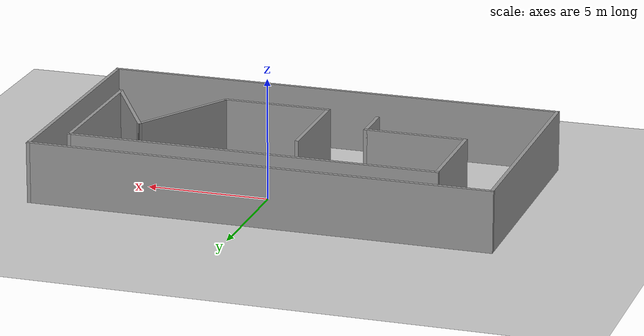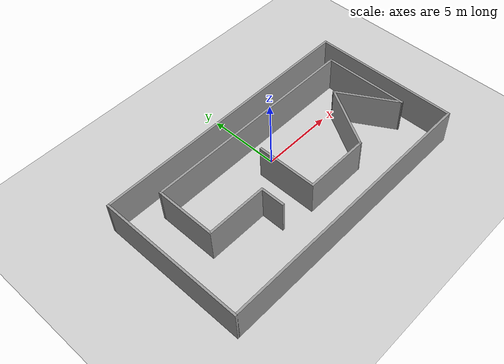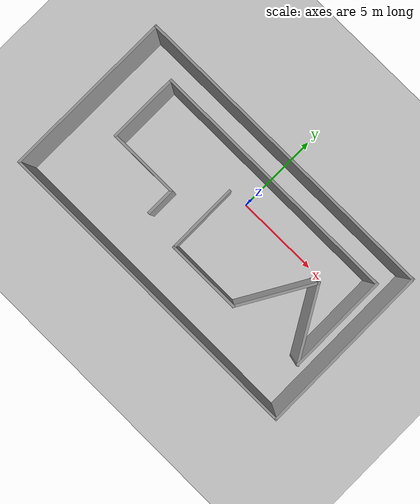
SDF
<?xml version='1.0'?>
<sdf version='1.7'>
  <world name='kitchen'>
    <!-- Scene settings -->
    <scene>
      <ambient>0.4 0.4 0.4 1</ambient>
      <background>0.7 0.7 0.7 1</background>
      <sky/>
    </scene>

    <!-- Light source -->
    <light type='directional' name='sun'>
      <cast_shadows>true</cast_shadows>
      <pose>0 0 10 0 0 0</pose>
      <diffuse>0.8 0.8 0.8 1</diffuse>
      <specular>0.2 0.2 0.2 1</specular>
      <direction>-0.5 0.1 -0.9</direction>
    </light>

    <!-- Physics settings -->
    <physics type='ode'>
      <max_step_size>0.001</max_step_size>
      <real_time_factor>1</real_time_factor>
      <real_time_update_rate>1000</real_time_update_rate>
    </physics>

    <!-- Your model -->
    <model name='kitchen.world'>
      <pose>-0.5663 -1.88945 0 0 -0 0</pose>
      <link name='Wall_10'>
        <collision name='Wall_10_Collision'>
          <geometry>
            <box>
              <size>19 0.15 2.5</size>
            </box>
          </geometry>
          <pose>0 0 1.25 0 -0 0</pose>
        </collision>
        <visual name='Wall_10_Visual'>
          <pose>0 0 1.25 0 -0 0</pose>
          <geometry>
            <box>
              <size>19 0.15 2.5</size>
            </box>
          </geometry>
          <material>
            <script>
              <uri>file://media/materials/scripts/gazebo.material</uri>
              <name>Gazebo/Grey</name>
            </script>
            <ambient>1 1 1 1</ambient>
          </material>
          <meta>
            <layer>0</layer>
          </meta>
        </visual>
        <pose>-0 5.05 0 0 -0 3.14159</pose>
      </link>
      <link name='Wall_24'>
        <collision name='Wall_24_Collision'>
          <geometry>
            <box>
              <size>4.25 0.15 2.5</size>
            </box>
          </geometry>
          <pose>0 0 1.25 0 -0 0</pose>
        </collision>
        <visual name='Wall_24_Visual'>
          <pose>0 0 1.25 0 -0 0</pose>
          <geometry>
            <box>
              <size>4.25 0.15 2.5</size>
            </box>
          </geometry>
          <material>
            <script>
              <uri>file://media/materials/scripts/gazebo.material</uri>
              <name>Gazebo/Grey</name>
            </script>
            <ambient>1 1 1 1</ambient>
          </material>
          <meta>
            <layer>0</layer>
          </meta>
        </visual>
        <pose>-0.559952 -0.447519 0 0 -0 -1.5708</pose>
      </link>
      <link name='Wall_25'>
        <collision name='Wall_25_Collision'>
          <geometry>
            <box>
              <size>4.5 0.15 2.5</size>
            </box>
          </geometry>
          <pose>0 0 1.25 0 -0 0</pose>
        </collision>
        <visual name='Wall_25_Visual'>
          <pose>0 0 1.25 0 -0 0</pose>
          <geometry>
            <box>
              <size>4.5 0.15 2.5</size>
            </box>
          </geometry>
          <material>
            <script>
              <uri>file://media/materials/scripts/gazebo.material</uri>
              <name>Gazebo/Grey</name>
            </script>
            <ambient>1 1 1 1</ambient>
          </material>
          <meta>
            <layer>0</layer>
          </meta>
        </visual>
        <pose>1.61505 -2.49752 0 0 -0 0</pose>
      </link>
      <link name='Wall_26'>
        <collision name='Wall_26_Collision'>
          <geometry>
            <box>
              <size>4.75 0.15 2.5</size>
            </box>
          </geometry>
          <pose>0 0 1.25 0 -0 0</pose>
        </collision>
        <visual name='Wall_26_Visual'>
          <pose>0 0 1.25 0 -0 0</pose>
          <geometry>
            <box>
              <size>4.75 0.15 2.5</size>
            </box>
          </geometry>
          <material>
            <script>
              <uri>file://media/materials/scripts/gazebo.material</uri>
              <name>Gazebo/Grey</name>
            </script>
            <ambient>1 1 1 1</ambient>
          </material>
          <meta>
            <layer>0</layer>
          </meta>
        </visual>
        <pose>4.94005 -0.50566 0 0 -0 1.0472</pose>
      </link>
      <link name='Wall_27'>
        <collision name='Wall_27_Collision'>
          <geometry>
            <box>
              <size>4.5 0.15 2.5</size>
            </box>
          </geometry>
          <pose>0 0 1.25 0 -0 0</pose>
        </collision>
        <visual name='Wall_27_Visual'>
          <pose>0 0 1.25 0 -0 0</pose>
          <geometry>
            <box>
              <size>4.5 0.15 2.5</size>
            </box>
          </geometry>
          <material>
            <script>
              <uri>file://media/materials/scripts/gazebo.material</uri>
              <name>Gazebo/Grey</name>
            </script>
            <ambient>1 1 1 1</ambient>
          </material>
          <meta>
            <layer>0</layer>
          </meta>
        </visual>
        <pose>7.17755 -0.397407 0 0 -0 -1.0472</pose>
      </link>
      <link name='Wall_28'>
        <collision name='Wall_28_Collision'>
          <geometry>
            <box>
              <size>6 0.15 2.5</size>
            </box>
          </geometry>
          <pose>0 0 1.25 0 -0 0</pose>
        </collision>
        <visual name='Wall_28_Visual'>
          <pose>0 0 1.25 0 -0 0</pose>
          <geometry>
            <box>
              <size>6 0.15 2.5</size>
            </box>
          </geometry>
          <material>
            <script>
              <uri>file://media/materials/scripts/gazebo.material</uri>
              <name>Gazebo/Grey</name>
            </script>
            <ambient>1 1 1 1</ambient>
          </material>
          <meta>
            <layer>0</layer>
          </meta>
        </visual>
        <pose>8.26505 0.643988 0 0 -0 1.5708</pose>
      </link>
      <link name='Wall_29'>
        <collision name='Wall_29_Collision'>
          <geometry>
            <box>
              <size>15.25 0.15 2.5</size>
            </box>
          </geometry>
          <pose>0 0 1.25 0 -0 0</pose>
        </collision>
        <visual name='Wall_29_Visual'>
          <pose>0 0 1.25 0 -0 0</pose>
          <geometry>
            <box>
              <size>15.25 0.15 2.5</size>
            </box>
          </geometry>
          <material>
            <script>
              <uri>file://media/materials/scripts/gazebo.material</uri>
              <name>Gazebo/Grey</name>
            </script>
            <ambient>1 1 1 1</ambient>
          </material>
          <meta>
            <layer>0</layer>
          </meta>
        </visual>
        <pose>0.715048 3.56899 0 0 -0 3.14159</pose>
      </link>
      <link name='Wall_30'>
        <collision name='Wall_30_Collision'>
          <geometry>
            <box>
              <size>4.25 0.15 2.5</size>
            </box>
          </geometry>
          <pose>0 0 1.25 0 -0 0</pose>
        </collision>
        <visual name='Wall_30_Visual'>
          <pose>0 0 1.25 0 -0 0</pose>
          <geometry>
            <box>
              <size>4.25 0.15 2.5</size>
            </box>
          </geometry>
          <material>
            <script>
              <uri>file://media/materials/scripts/gazebo.material</uri>
              <name>Gazebo/Grey</name>
            </script>
            <ambient>1 1 1 1</ambient>
          </material>
          <meta>
            <layer>0</layer>
          </meta>
        </visual>
        <pose>-6.83495 1.51899 0 0 -0 -1.5708</pose>
      </link>
      <link name='Wall_31'>
        <collision name='Wall_31_Collision'>
          <geometry>
            <box>
              <size>4.25 0.15 2.5</size>
            </box>
          </geometry>
          <pose>0 0 1.25 0 -0 0</pose>
        </collision>
        <visual name='Wall_31_Visual'>
          <pose>0 0 1.25 0 -0 0</pose>
          <geometry>
            <box>
              <size>4.25 0.15 2.5</size>
            </box>
          </geometry>
          <material>
            <script>
              <uri>file://media/materials/scripts/gazebo.material</uri>
              <name>Gazebo/Grey</name>
            </script>
            <ambient>1 1 1 1</ambient>
          </material>
          <meta>
            <layer>0</layer>
          </meta>
        </visual>
        <pose>-4.78495 -0.531012 0 0 -0 0</pose>
      </link>
      <link name='Wall_32'>
        <collision name='Wall_32_Collision'>
          <geometry>
            <box>
              <size>1.75 0.15 2.5</size>
            </box>
          </geometry>
          <pose>0 0 1.25 0 -0 0</pose>
        </collision>
        <visual name='Wall_32_Visual'>
          <pose>0 0 1.25 0 -0 0</pose>
          <geometry>
            <box>
              <size>1.75 0.15 2.5</size>
            </box>
          </geometry>
          <material>
            <script>
              <uri>file://media/materials/scripts/gazebo.material</uri>
              <name>Gazebo/Grey</name>
            </script>
            <ambient>1 1 1 1</ambient>
          </material>
          <meta>
            <layer>0</layer>
          </meta>
        </visual>
        <pose>-2.73495 -1.33101 0 0 -0 -1.5708</pose>
      </link>
      <link name='Wall_7'>
        <collision name='Wall_7_Collision'>
          <geometry>
            <box>
              <size>10.25 0.15 2.5</size>
            </box>
          </geometry>
          <pose>0 0 1.25 0 -0 0</pose>
        </collision>
        <visual name='Wall_7_Visual'>
          <pose>0 0 1.25 0 -0 0</pose>
          <geometry>
            <box>
              <size>10.25 0.15 2.5</size>
            </box>
          </geometry>
          <material>
            <script>
              <uri>file://media/materials/scripts/gazebo.material</uri>
              <name>Gazebo/Grey</name>
            </script>
            <ambient>1 1 1 1</ambient>
          </material>
          <meta>
            <layer>0</layer>
          </meta>
        </visual>
        <pose>-9.425 0 0 0 -0 -1.5708</pose>
      </link>
      <link name='Wall_8'>
        <collision name='Wall_8_Collision'>
          <geometry>
            <box>
              <size>19 0.15 2.5</size>
            </box>
          </geometry>
          <pose>0 0 1.25 0 -0 0</pose>
        </collision>
        <visual name='Wall_8_Visual'>
          <pose>0 0 1.25 0 -0 0</pose>
          <geometry>
            <box>
              <size>19 0.15 2.5</size>
            </box>
          </geometry>
          <material>
            <script>
              <uri>file://media/materials/scripts/gazebo.material</uri>
              <name>Gazebo/Grey</name>
            </script>
            <ambient>1 1 1 1</ambient>
          </material>
          <meta>
            <layer>0</layer>
          </meta>
        </visual>
        <pose>-0 -5.05 0 0 -0 0</pose>
      </link>
      <link name='Wall_9'>
        <collision name='Wall_9_Collision'>
          <geometry>
            <box>
              <size>10.25 0.15 2.5</size>
            </box>
          </geometry>
          <pose>0 0 1.25 0 -0 0</pose>
        </collision>
        <visual name='Wall_9_Visual'>
          <pose>0 0 1.25 0 -0 0</pose>
          <geometry>
            <box>
              <size>10.25 0.15 2.5</size>
            </box>
          </geometry>
          <material>
            <script>
              <uri>file://media/materials/scripts/gazebo.material</uri>
              <name>Gazebo/Grey</name>
            </script>
            <ambient>1 1 1 1</ambient>
          </material>
          <meta>
            <layer>0</layer>
          </meta>
        </visual>
        <pose>9.425 0 0 0 -0 1.5708</pose>
      </link>
      <static>1</static>
    </model>

    <!-- Ground plane -->
    <model name='ground_plane'>
      <static>true</static>
      <link name='link'>
        <collision name='collision'>
          <geometry>
            <plane>
              <normal>0 0 1</normal>
              <size>100 100</size>
            </plane>
          </geometry>
          <surface>
            <friction>
              <ode>
                <mu>100</mu>
                <mu2>50</mu2>
              </ode>
            </friction>
          </surface>
        </collision>
        <visual name='visual'>
          <cast_shadows>false</cast_shadows>
          <geometry>
            <plane>
              <normal>0 0 1</normal>
              <size>100 100</size>
            </plane>
          </geometry>
          <material>
            <script>
              <uri>file://media/materials/scripts/gazebo.material</uri>
              <name>Gazebo/Grey</name>
            </script>
          </material>
        </visual>
      </link>
    </model>
  </world>
</sdf>
